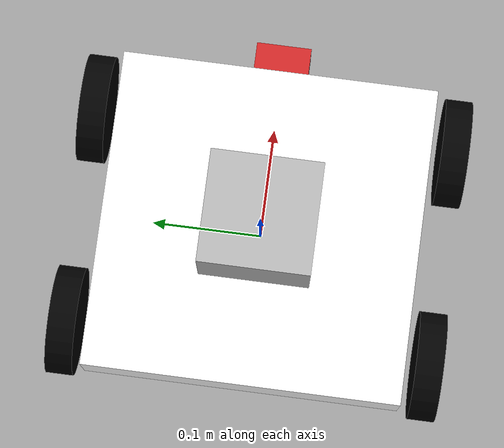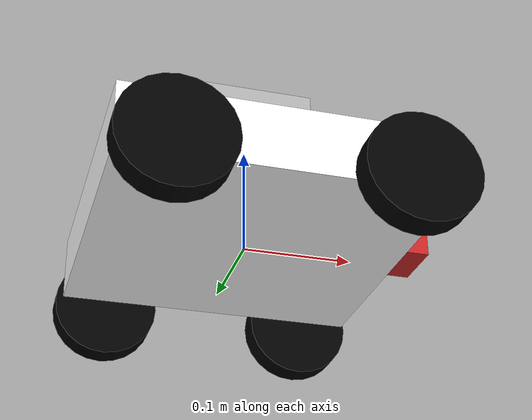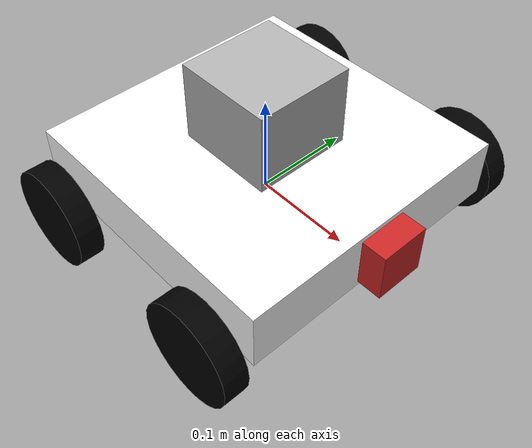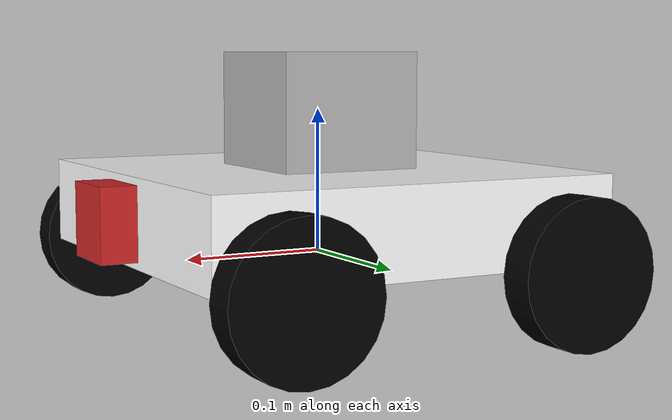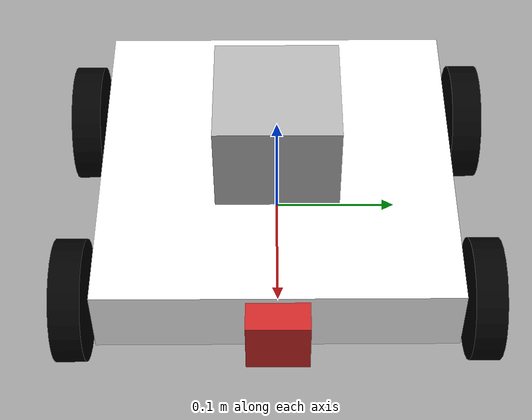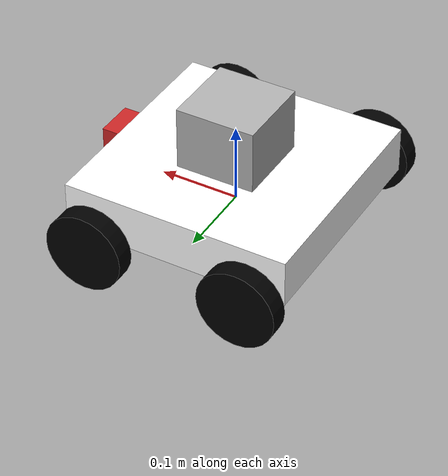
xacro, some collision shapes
<?xml version="1.0"?>
<robot name="tetrix" xmlns:xacro="http://www.ros.org/wiki/xacro">

    <!-- Import all Gazebo-customization elements, including Gazebo colors -->
    <xacro:include filename="$(find tetrix)/urdf/robot_gazebo.gazebo" />

    <xacro:property name="camera_link" value="0.05" />
    <xacro:property name="wheel_kp" value="1000.0" />
    <xacro:property name="wheel_kd" value="100.0" />
    <xacro:property name="wheel_mu1" value="1" />
    <xacro:property name="wheel_mu2" value="1" />
    <xacro:property name="wheel_slip1" value="0.5" />
    <xacro:property name="wheel_slip2" value="0" />
    <xacro:property name="laser_width" value="0.1" />
    <xacro:property name="laser_length" value="0.1" />
    <xacro:property name="laser_height" value="0.1" />
    <xacro:property name="wheel_inertia" value="1e-3" />

    <!-- Length along X-axis, Width along Y-axis, Height along Z-axis -->
    <xacro:property name="base_width" value="0.288" />
    <xacro:property name="base_length" value="0.288" />
    <xacro:property name="base_height" value="0.6" />
    <xacro:property name="base_mass" value="30" />

    <!-- inertia = 1/12*m(h^2+d^2) -->
    <xacro:property name="height_2" value="${base_height * base_height}" />
    <xacro:property name="width_2" value="${base_width * base_width}" />
    <xacro:property name="length_2" value="${base_length * base_length}" />
    <xacro:property name="base_inertia_xx" value="${base_mass/12.0 * (height_2 + width_2)}" />
    <xacro:property name="base_inertia_yy" value="${base_mass/12.0 * (height_2 + length_2)}" />
    <xacro:property name="base_inertia_zz" value="${base_mass/12.0 * (width_2 + length_2)}" />

    <!-- Dummy Link -->
    <link name="robot_footprint"></link>

    <joint name="robot_footprint_joint" type="fixed">
       <origin xyz="0 0 0" rpy="0 0 0" />
       <parent link="robot_footprint" />
       <child link="base_link" />
    </joint>

    <!-- Base Link -->
    <link name="base_link">
        <visual>
            <geometry>
                <box size="0.288 0.288 0.06"/>
            </geometry>
            <origin xyz="0.0 0.0 0.03" rpy="0 0.0 0.0"/>
            <material name="white">
                <color rgba="1.0 1.0 1.0 1.0"/>
            </material>
        </visual>
        <collision>
            <geometry>
                <box size="0.288 0.288 0.06"/>
            </geometry>
            <origin xyz="0.0 0.0 0.03" rpy="0 0.0 0.0"/>
        </collision>
        <inertial>
            <mass value="${base_mass}"/>
            <inertia ixx="${base_inertia_xx}" ixy="0" ixz="0" iyy="${base_inertia_yy}" iyz="0" izz="${base_inertia_zz}"/>
        </inertial>
    </link>

    <!-- Wheels -->
    <link name="left_front_wheel">
        <visual>
            <geometry>
                <cylinder radius="0.05" length="0.025"/>
            </geometry>
            <origin xyz="0.0 0.0 0.0" rpy="0.0 1.5707 1.5707"/>
            <material name="black">
                <color rgba="0.0 0.0 0.0 1.0"/>
            </material>
        </visual>
        <collision>
            <geometry>
                <cylinder radius="0.05" length="0.025"/>
            </geometry>
            <surface>
              <friction>
                <fdir1>1 0 0</fdir1>
                <kp>${wheel_kp}</kp> <!-- kp and kd for rubber -->
                <kd>${wheel_kd}</kd>
                <mu>${wheel_mu1}</mu>
                <mu2>${wheel_mu2}</mu2>
                <slip1>${wheel_slip1}</slip1>
                <slip2>${wheel_slip2}</slip2>
             </friction>
           </surface>
           <origin xyz="0.0 0.0 0.0" rpy="0 1.5707 1.5707"/>
        </collision>
        <inertial>
            <mass value="10"/>
            <!--Calculate inertia matrix -->
            <inertia  ixx="${wheel_inertia}" ixy="0" ixz="0"
                      iyy="${wheel_inertia}" iyz="0"
                      izz="${wheel_inertia}" />
        </inertial>
    </link>

    <link name="right_front_wheel">
        <visual>
            <geometry>
                <cylinder radius="0.05" length="0.025"/>
            </geometry>
            <origin xyz="0.0 0.0 0.0" rpy="0 1.5707 1.5707"/>
            <material name="black">
                <color rgba="0.0 0.0 0.0 1.0"/>
            </material>
        </visual>
        <collision>
            <geometry>
                <cylinder radius="0.05" length="0.025"/>
            </geometry>
            <surface>
              <friction>
                <fdir1>1 0 0</fdir1>
                <kp>${wheel_kp}</kp> <!-- kp and kd for rubber -->
                <kd>${wheel_kd}</kd>
                <mu>${wheel_mu1}</mu>
                <mu2>${wheel_mu2}</mu2>
                <slip1>${wheel_slip1}</slip1>
                <slip2>${wheel_slip2}</slip2>
              </friction>
            </surface>
            <origin xyz="0.0 0.0 0.0" rpy="0 1.5707 1.5707"/>
        </collision>
        <inertial>
            <mass value="1"/>
            <!--Calculate inertia matrix -->
            <inertia  ixx="${wheel_inertia}" ixy="0" ixz="0"
                      iyy="${wheel_inertia}" iyz="0"
                      izz="${wheel_inertia}" />
        </inertial>
    </link>

    <link name="right_back_wheel">
        <visual>
            <geometry>
                <cylinder radius="0.05" length="0.025"/>
            </geometry>
            <origin xyz="0.0 0.0 0.0" rpy="0 1.5707 1.5707"/>
            <material name="black">
                <color rgba="0.0 0.0 0.0 1.0"/>
            </material>
        </visual>
        <collision>
            <geometry>
                <cylinder radius="0.05" length="0.025"/>
            </geometry>
            <surface>
               <friction>
                  <fdir1>1 0 0</fdir1>
                  <kp>${wheel_kp}</kp> <!-- kp and kd for rubber -->
                  <kd>${wheel_kd}</kd>
                  <mu>${wheel_mu1}</mu>
                  <mu2>${wheel_mu2}</mu2>
                  <slip1>${wheel_slip1}</slip1>
                  <slip2>${wheel_slip2}</slip2>
              </friction>
            </surface>
            <origin xyz="0.0 0.0 0.0" rpy="0 1.5707 1.5707"/>
        </collision>
        <inertial>
            <mass value="1"/>
            <!--Calculate inertia matrix -->
            <inertia  ixx="${wheel_inertia}" ixy="0" ixz="0"
                      iyy="${wheel_inertia}" iyz="0"
                      izz="${wheel_inertia}" />
        </inertial>
    </link>

    <link name="left_back_wheel">
        <visual>
            <geometry>
                <cylinder radius="0.05" length="0.025"/>
            </geometry>
            <origin xyz="0.0 0.0 0.0" rpy="0 1.5707 1.5707"/>
            <material name="black">
                <color rgba="0.0 0.0 0.0 1.0"/>
            </material>
        </visual>
        <collision>
            <geometry>
                <cylinder radius="0.05" length="0.025"/>
            </geometry>
            <surface>
              <friction>
                <fdir1>1 0 0</fdir1>
                <kp>${wheel_kp}</kp> <!-- kp and kd for rubber -->
                <kd>${wheel_kd}</kd>
                <mu>${wheel_mu1}</mu>
                <mu2>${wheel_mu2}</mu2>
                <slip1>${wheel_slip1}</slip1>
                <slip2>${wheel_slip2}</slip2>
             </friction>
           </surface>
           <origin xyz="0.0 0.0 0.0" rpy="0 1.5707 1.5707"/>
        </collision>
        <inertial>
            <mass value="1"/>
            <!--Calculate inertia matrix -->
            <inertia  ixx="${wheel_inertia}" ixy="0" ixz="0"
                      iyy="${wheel_inertia}" iyz="0"
                      izz="${wheel_inertia}" />
        </inertial>
    </link>

    <!-- Camera Link -->
    <link name="camera_link">
        <collision>
            <origin xyz="0 0 0" rpy="0 0 0"/>
            <geometry>
                <box size="0.04 0.04 0.04"/>
            </geometry>
        </collision>

        <visual>
            <origin xyz="0 0 0" rpy="0 0 0"/>
            <geometry>
                <box size="0.05 0.05 0.05"/>
            </geometry>
            <material name="red"/>
        </visual>

        <inertial>
            <mass value="1e-5" />
            <origin xyz="0 0 0" rpy="0 0 0"/>
            <inertia ixx="1e-6" ixy="0" ixz="0" iyy="1e-6" iyz="0" izz="1e-6" />
        </inertial>
    </link>

    <joint name="base_to_right_front_wheel" type="continuous">
        <parent link="base_link"/>
        <child link="right_front_wheel"/>
        <axis xyz="0.0 1 0.0"/>
        <origin xyz="0.100 -0.1665 0.0"/>
    </joint>
    <joint name="base_to_left_front_wheel" type="continuous">
        <parent link="base_link"/>
        <child link="left_front_wheel"/>
        <axis xyz="0.0 1 0.0"/>
        <origin xyz="0.100 0.1665 0.0"/>
    </joint>
    <joint name="base_to_left_back_wheel" type="continuous">
        <parent link="base_link"/>
        <child link="left_back_wheel"/>
        <axis xyz="0.0 1 0.0"/>
        <origin xyz="-0.100 0.1665 0.0"/>
    </joint>
    <joint name="base_to_right_back_wheel" type="continuous">
        <parent link="base_link"/>
        <child link="right_back_wheel"/>
        <axis xyz="0.0 1 0.0"/>
        <origin xyz="-0.100 -0.1665 0.0"/>
    </joint>

    <!--Camera Joint-->
    <joint name="camera_joint" type="fixed">
        <axis xyz="0 1 0" />
        <origin xyz="0.144 0 0.03 " rpy="0 0 0"/>
        <parent link="base_link"/>
        <child link="camera_link"/>
    </joint>

    <!-- Hokuyo Link and Joint -->
    <link name='hokuyo'>
    <pose>0 0 0 0 0 0</pose>
    <inertial>
      <mass value="0.1"/>
      <origin xyz="0 0 0" rpy=" 0 0 0"/>
      <inertia
          ixx="1e-6" ixy="0" ixz="0"
          iyy="1e-6" iyz="0"
          izz="1e-6" />
    </inertial>
    <collision name='hokuyo_collision'>
      <origin xyz="0 0 0" rpy=" 0 0 0"/>
      <geometry>
        <box size="${laser_length} ${laser_width} ${laser_height}"/>
      </geometry>
    </collision>
    <visual name='hokuyo_visual'>
      <origin xyz="0 0 0" rpy=" 0 0 0"/>
      <geometry>
        <mesh filename="package://tetrix/meshes/hokuyo.dae"/>
      </geometry>
    </visual>
  </link>

  <joint type="fixed" name="hokuyo_joint">
    <origin xyz="0.0 0 0.09 " rpy="0 0 0"/>
    <child link="hokuyo"/>
    <parent link="base_link"/>
    <axis xyz="0 1 0" rpy="0 0 0"/>
    <limit effort="10000" velocity="1000"/>
    <joint_properties damping="1.0" friction="1.0"/>
  </joint>

  <!-- Transmission -->
  <transmission name="tran1">
    <type>transmission_interface/SimpleTransmission</type>
    <joint name="base_to_right_back_wheel">
      <hardwareInterface>EffortJointInterface</hardwareInterface>
    </joint>
    <actuator name="motor1">
      <hardwareInterface>EffortJointInterface</hardwareInterface>
      <mechanicalReduction>1</mechanicalReduction>
    </actuator>
  </transmission>

  <transmission name="tran2">
    <type>transmission_interface/SimpleTransmission</type>
    <joint name="base_to_left_back_wheel">
      <hardwareInterface>EffortJointInterface</hardwareInterface>
    </joint>
    <actuator name="motor2">
      <hardwareInterface>EffortJointInterface</hardwareInterface>
      <mechanicalReduction>1</mechanicalReduction>
    </actuator>
  </transmission>

</robot>
